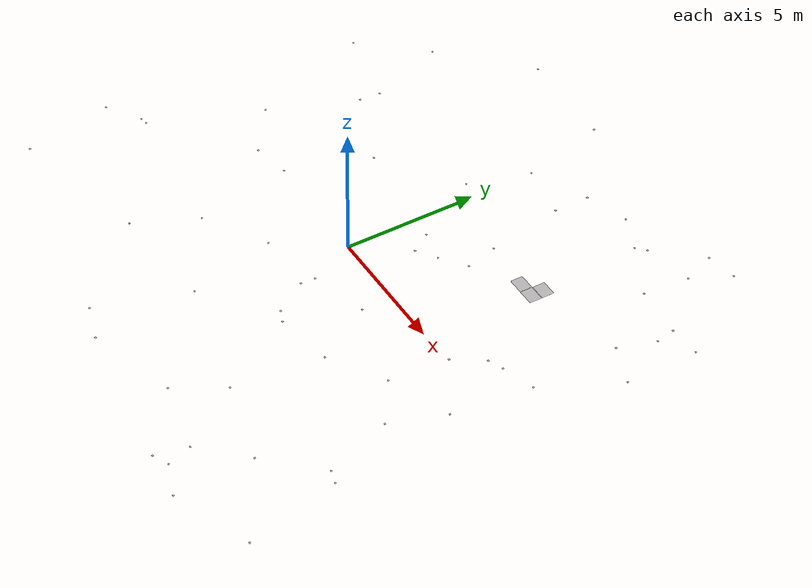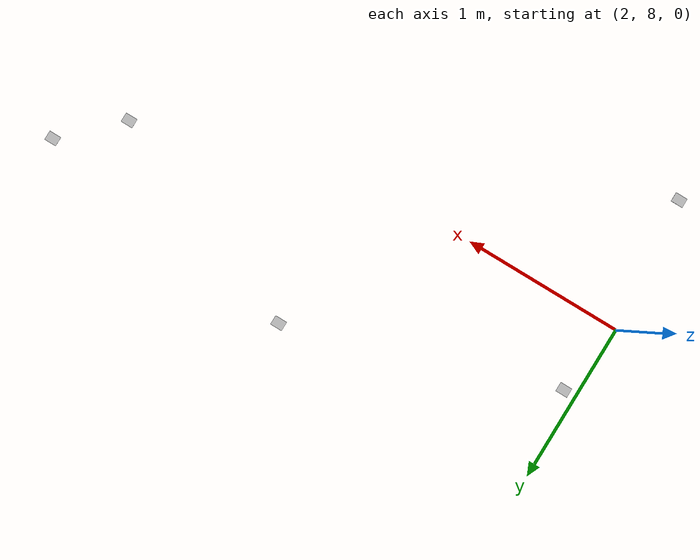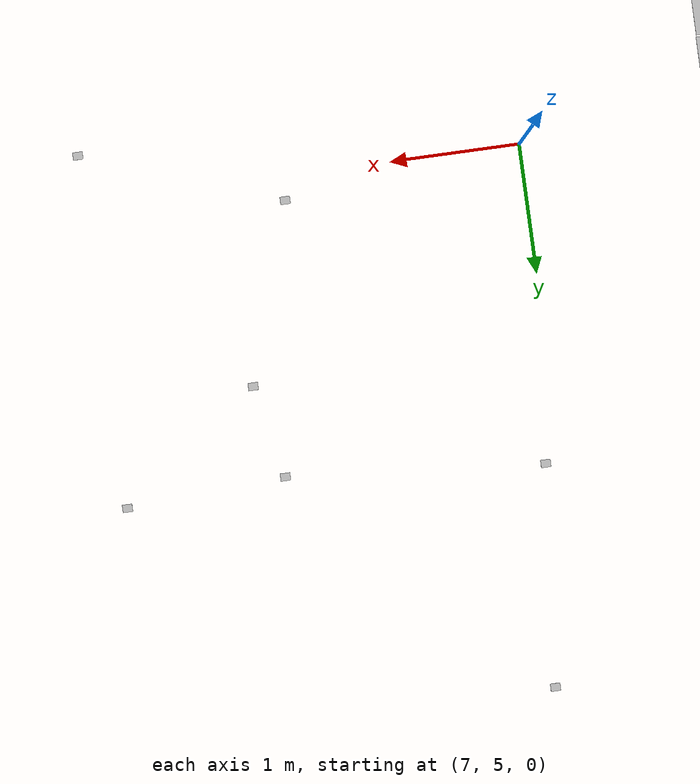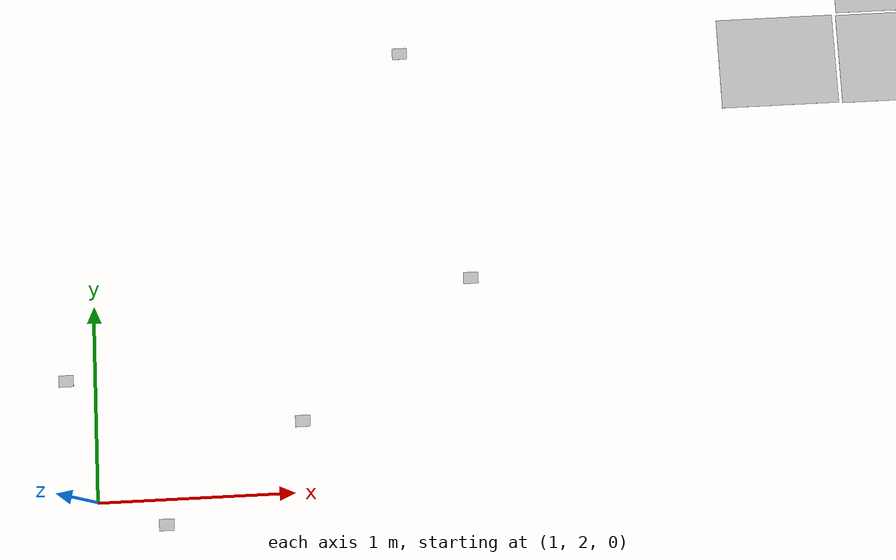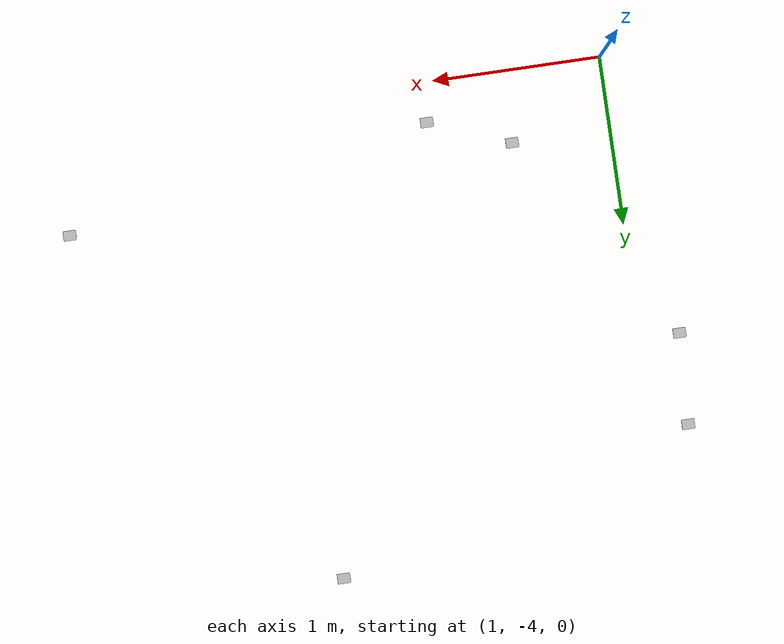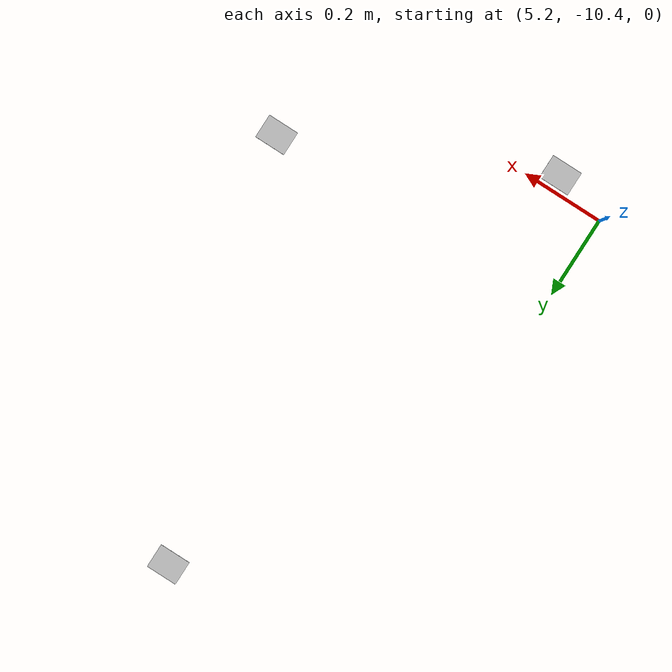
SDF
<sdf version="1.4">
 <world name="default">
  <light name="sun" type="directional">
   <pose>0 0 10 0 -0 0</pose>
   <diffuse>0.8 0.8 0.8 1</diffuse>
   <specular>0.2 0.2 0.2 1</specular>
   <attenuation>
    <range>1000</range>
    <constant>0.9</constant>
    <linear>0.01</linear>
    <quadratic>0.001</quadratic>
   </attenuation>
   <direction>-0.5 0.1 -0.9</direction>
  </light>
  <plugin name="SetupWorld" filename="libgazebo_plugins.so"/>
  <physics type="ode">
   <max_step_size>0.001</max_step_size>
   <real_time_factor>1</real_time_factor>
   <real_time_update_rate>1000</real_time_update_rate>
   <gravity>0 0 -9.8</gravity>
  </physics>
  <scene><ambient>0.4 0.4 0.4 1</ambient><background>0.7 0.7 0.7 1</background><shadows>1</shadows></scene>
  <spherical_coordinates>
   <surface_model>EARTH_WGS84</surface_model>
   <latitude_deg>0</latitude_deg>
   <longitude_deg>0</longitude_deg>
   <elevation>0</elevation>
   <heading_deg>0</heading_deg>
  </spherical_coordinates>
  <model name="at0">
   <static>1</static>
   <link name="link">
    <collision name="collision"><geometry><box><size>0.0763 0.05912 0.001</size></box></geometry></collision>
    <visual name="visual">
     <geometry><box><size>0.0763 0.05912 0.001</size></box></geometry>
     <material>
      <script>
       <uri>model://at0/materials/scripts</uri>
       <uri>model://at0/materials/textures</uri>
       <name>at0/Diffuse</name>
      </script>
     </material>
    </visual>
    <velocity_decay><linear>0</linear><angular>0</angular></velocity_decay>
   </link>
   <pose>8.83613 5.18277 0 0 -0 0</pose>
  </model>
  <model name="at1">
   <static>1</static>
   <link name="link">
    <collision name="collision"><geometry><box><size>0.0763 0.05912 0.001</size></box></geometry></collision>
    <visual name="visual">
     <geometry><box><size>0.0763 0.05912 0.001</size></box></geometry>
     <material>
      <script>
       <uri>model://at1/materials/scripts</uri>
       <uri>model://at1/materials/textures</uri>
       <name>at1/Diffuse</name>
      </script>
     </material>
    </visual>
    <velocity_decay><linear>0</linear><angular>0</angular></velocity_decay>
   </link>
   <pose>7.28107 9.16257 0 0 -0 0</pose>
  </model>
  <model name="at2">
   <static>1</static>
   <link name="link">
    <collision name="collision"><geometry><box><size>0.0763 0.05912 0.001</size></box></geometry></collision>
    <visual name="visual">
     <geometry><box><size>0.0763 0.05912 0.001</size></box></geometry>
     <material>
      <script>
       <uri>model://at2/materials/scripts</uri>
       <uri>model://at2/materials/textures</uri>
       <name>at2/Diffuse</name>
      </script>
     </material>
    </visual>
    <velocity_decay><linear>0</linear><angular>0</angular></velocity_decay>
   </link>
   <pose>-0.459324 -9.5369 0 0 -0 0</pose>
  </model>
  <model name="at3">
   <static>1</static>
   <link name="link">
    <collision name="collision"><geometry><box><size>0.0763 0.05912 0.001</size></box></geometry></collision>
    <visual name="visual">
     <geometry><box><size>0.0763 0.05912 0.001</size></box></geometry>
     <material>
      <script>
       <uri>model://at3/materials/scripts</uri>
       <uri>model://at3/materials/textures</uri>
       <name>at3/Diffuse</name>
      </script>
     </material>
    </visual>
    <velocity_decay><linear>0</linear><angular>0</angular></velocity_decay>
   </link>
   <pose>4.25449 -3.39468 0 0 -0 0</pose>
  </model>
  <model name="at4">
   <static>1</static>
   <link name="link">
    <collision name="collision"><geometry><box><size>0.0763 0.05912 0.001</size></box></geometry></collision>
    <visual name="visual">
     <geometry><box><size>0.0763 0.05912 0.001</size></box></geometry>
     <material>
      <script>
       <uri>model://at4/materials/scripts</uri>
       <uri>model://at4/materials/textures</uri>
       <name>at4/Diffuse</name>
      </script>
     </material>
    </visual>
    <velocity_decay><linear>0</linear><angular>0</angular></velocity_decay>
   </link>
   <pose>2.62708 4.26163 0 0 -0 0</pose>
  </model>
  <model name="at5">
   <static>1</static>
   <link name="link">
    <collision name="collision"><geometry><box><size>0.0763 0.05912 0.001</size></box></geometry></collision>
    <visual name="visual">
     <geometry><box><size>0.0763 0.05912 0.001</size></box></geometry>
     <material>
      <script>
       <uri>model://at5/materials/scripts</uri>
       <uri>model://at5/materials/textures</uri>
       <name>at5/Diffuse</name>
      </script>
     </material>
    </visual>
    <velocity_decay><linear>0</linear><angular>0</angular></velocity_decay>
   </link>
   <pose>-0.003685 7.46622 0 0 -0 0</pose>
  </model>
  <model name="at6">
   <static>1</static>
   <link name="link">
    <collision name="collision"><geometry><box><size>0.0763 0.05912 0.001</size></box></geometry></collision>
    <visual name="visual">
     <geometry><box><size>0.0763 0.05912 0.001</size></box></geometry>
     <material>
      <script>
       <uri>model://at6/materials/scripts</uri>
       <uri>model://at6/materials/textures</uri>
       <name>at6/Diffuse</name>
      </script>
     </material>
    </visual>
    <velocity_decay><linear>0</linear><angular>0</angular></velocity_decay>
   </link>
   <pose>-7.4865 7.94542 0 0 -0 0</pose>
  </model>
  <model name="at7">
   <static>1</static>
   <link name="link">
    <collision name="collision"><geometry><box><size>0.0763 0.05912 0.001</size></box></geometry></collision>
    <visual name="visual">
     <geometry><box><size>0.0763 0.05912 0.001</size></box></geometry>
     <material>
      <script>
       <uri>model://at7/materials/scripts</uri>
       <uri>model://at7/materials/textures</uri>
       <name>at7/Diffuse</name>
      </script>
     </material>
    </visual>
    <velocity_decay><linear>0</linear><angular>0</angular></velocity_decay>
   </link>
   <pose>3.89666 -6.79232 0 0 -0 0</pose>
  </model>
  <model name="at8">
   <static>1</static>
   <link name="link">
    <collision name="collision"><geometry><box><size>0.0763 0.05912 0.001</size></box></geometry></collision>
    <visual name="visual">
     <geometry><box><size>0.0763 0.05912 0.001</size></box></geometry>
     <material>
      <script>
       <uri>model://at8/materials/scripts</uri>
       <uri>model://at8/materials/textures</uri>
       <name>at8/Diffuse</name>
      </script>
     </material>
    </visual>
    <velocity_decay><linear>0</linear><angular>0</angular></velocity_decay>
   </link>
   <pose>6.2705 -2.13614 0 0 -0 0</pose>
  </model>
  <model name="at9">
   <static>1</static>
   <link name="link">
    <collision name="collision"><geometry><box><size>0.0763 0.05912 0.001</size></box></geometry></collision>
    <visual name="visual">
     <geometry><box><size>0.0763 0.05912 0.001</size></box></geometry>
     <material>
      <script>
       <uri>model://at9/materials/scripts</uri>
       <uri>model://at9/materials/textures</uri>
       <name>at9/Diffuse</name>
      </script>
     </material>
    </visual>
    <velocity_decay><linear>0</linear><angular>0</angular></velocity_decay>
   </link>
   <pose>-1.56764 -2.27491 0 0 -0 0</pose>
  </model>
  <model name="at10">
   <static>1</static>
   <link name="link">
    <collision name="collision"><geometry><box><size>0.0763 0.05912 0.001</size></box></geometry></collision>
    <visual name="visual">
     <geometry><box><size>0.0763 0.05912 0.001</size></box></geometry>
     <material>
      <script>
       <uri>model://at10/materials/scripts</uri>
       <uri>model://at10/materials/textures</uri>
       <name>at10/Diffuse</name>
      </script>
     </material>
    </visual>
    <velocity_decay><linear>0</linear><angular>0</angular></velocity_decay>
   </link>
   <pose>-6.44239 5.0842 0 0 -0 0</pose>
  </model>
  <model name="at11">
   <static>1</static>
   <link name="link">
    <collision name="collision"><geometry><box><size>0.0763 0.05912 0.001</size></box></geometry></collision>
    <visual name="visual">
     <geometry><box><size>0.0763 0.05912 0.001</size></box></geometry>
     <material>
      <script>
       <uri>model://at11/materials/scripts</uri>
       <uri>model://at11/materials/textures</uri>
       <name>at11/Diffuse</name>
      </script>
     </material>
    </visual>
    <velocity_decay><linear>0</linear><angular>0</angular></velocity_decay>
   </link>
   <pose>-0.675889 5.1924 0 0 -0 0</pose>
  </model>
  <model name="at12">
   <static>1</static>
   <link name="link">
    <collision name="collision"><geometry><box><size>0.0763 0.05912 0.001</size></box></geometry></collision>
    <visual name="visual">
     <geometry><box><size>0.0763 0.05912 0.001</size></box></geometry>
     <material>
      <script>
       <uri>model://at12/materials/scripts</uri>
       <uri>model://at12/materials/textures</uri>
       <name>at12/Diffuse</name>
      </script>
     </material>
    </visual>
    <velocity_decay><linear>0</linear><angular>0</angular></velocity_decay>
   </link>
   <pose>-3.85181 -3.6424 0 0 -0 0</pose>
  </model>
  <model name="at13">
   <static>1</static>
   <link name="link">
    <collision name="collision"><geometry><box><size>0.0763 0.05912 0.001</size></box></geometry></collision>
    <visual name="visual">
     <geometry><box><size>0.0763 0.05912 0.001</size></box></geometry>
     <material>
      <script>
       <uri>model://at13/materials/scripts</uri>
       <uri>model://at13/materials/textures</uri>
       <name>at13/Diffuse</name>
      </script>
     </material>
    </visual>
    <velocity_decay><linear>0</linear><angular>0</angular></velocity_decay>
   </link>
   <pose>9.38117 -5.96568 0 0 -0 0</pose>
  </model>
  <model name="at14">
   <static>1</static>
   <link name="link">
    <collision name="collision"><geometry><box><size>0.0763 0.05912 0.001</size></box></geometry></collision>
    <visual name="visual">
     <geometry><box><size>0.0763 0.05912 0.001</size></box></geometry>
     <material>
      <script>
       <uri>model://at14/materials/scripts</uri>
       <uri>model://at14/materials/textures</uri>
       <name>at14/Diffuse</name>
      </script>
     </material>
    </visual>
    <velocity_decay><linear>0</linear><angular>0</angular></velocity_decay>
   </link>
   <pose>-9.40963 5.71224 0 0 -0 0</pose>
  </model>
  <model name="at15">
   <static>1</static>
   <link name="link">
    <collision name="collision"><geometry><box><size>0.0763 0.05912 0.001</size></box></geometry></collision>
    <visual name="visual">
     <geometry><box><size>0.0763 0.05912 0.001</size></box></geometry>
     <material>
      <script>
       <uri>model://at15/materials/scripts</uri>
       <uri>model://at15/materials/textures</uri>
       <name>at15/Diffuse</name>
      </script>
     </material>
    </visual>
    <velocity_decay><linear>0</linear><angular>0</angular></velocity_decay>
   </link>
   <pose>-7.75311 1.08105 0 0 -0 0</pose>
  </model>
  <model name="at16">
   <static>1</static>
   <link name="link">
    <collision name="collision"><geometry><box><size>0.0763 0.05912 0.001</size></box></geometry></collision>
    <visual name="visual">
     <geometry><box><size>0.0763 0.05912 0.001</size></box></geometry>
     <material>
      <script>
       <uri>model://at16/materials/scripts</uri>
       <uri>model://at16/materials/textures</uri>
       <name>at16/Diffuse</name>
      </script>
     </material>
    </visual>
    <velocity_decay><linear>0</linear><angular>0</angular></velocity_decay>
   </link>
   <pose>7.12534 7.45138 0 0 -0 0</pose>
  </model>
  <model name="at17">
   <static>1</static>
   <link name="link">
    <collision name="collision"><geometry><box><size>0.0763 0.05912 0.001</size></box></geometry></collision>
    <visual name="visual">
     <geometry><box><size>0.0763 0.05912 0.001</size></box></geometry>
     <material>
      <script>
       <uri>model://at17/materials/scripts</uri>
       <uri>model://at17/materials/textures</uri>
       <name>at17/Diffuse</name>
      </script>
     </material>
    </visual>
    <velocity_decay><linear>0</linear><angular>0</angular></velocity_decay>
   </link>
   <pose>8.63637 -1.19757 0 0 -0 0</pose>
  </model>
  <model name="at18">
   <static>1</static>
   <link name="link">
    <collision name="collision"><geometry><box><size>0.0763 0.05912 0.001</size></box></geometry></collision>
    <visual name="visual">
     <geometry><box><size>0.0763 0.05912 0.001</size></box></geometry>
     <material>
      <script>
       <uri>model://at18/materials/scripts</uri>
       <uri>model://at18/materials/textures</uri>
       <name>at18/Diffuse</name>
      </script>
     </material>
    </visual>
    <velocity_decay><linear>0</linear><angular>0</angular></velocity_decay>
   </link>
   <pose>0.763007 -2.31732 0 0 -0 0</pose>
  </model>
  <model name="at19">
   <static>1</static>
   <link name="link">
    <collision name="collision"><geometry><box><size>0.0763 0.05912 0.001</size></box></geometry></collision>
    <visual name="visual">
     <geometry><box><size>0.0763 0.05912 0.001</size></box></geometry>
     <material>
      <script>
       <uri>model://at19/materials/scripts</uri>
       <uri>model://at19/materials/textures</uri>
       <name>at19/Diffuse</name>
      </script>
     </material>
    </visual>
    <velocity_decay><linear>0</linear><angular>0</angular></velocity_decay>
   </link>
   <pose>-4.68135 10.7388 0 0 -0 0</pose>
  </model>
  <model name="at20">
   <static>1</static>
   <link name="link">
    <collision name="collision"><geometry><box><size>0.0763 0.05912 0.001</size></box></geometry></collision>
    <visual name="visual">
     <geometry><box><size>0.0763 0.05912 0.001</size></box></geometry>
     <material>
      <script>
       <uri>model://at20/materials/scripts</uri>
       <uri>model://at20/materials/textures</uri>
       <name>at20/Diffuse</name>
      </script>
     </material>
    </visual>
    <velocity_decay><linear>0</linear><angular>0</angular></velocity_decay>
   </link>
   <pose>7.7342 1.42 0 0 -0 0</pose>
  </model>
  <model name="at21">
   <static>1</static>
   <link name="link">
    <collision name="collision"><geometry><box><size>0.0763 0.05912 0.001</size></box></geometry></collision>
    <visual name="visual">
     <geometry><box><size>0.0763 0.05912 0.001</size></box></geometry>
     <material>
      <script>
       <uri>model://at21/materials/scripts</uri>
       <uri>model://at21/materials/textures</uri>
       <name>at21/Diffuse</name>
      </script>
     </material>
    </visual>
    <velocity_decay><linear>0</linear><angular>0</angular></velocity_decay>
   </link>
   <pose>2.93983 3.0547 0 0 -0 0</pose>
  </model>
  <model name="at22">
   <static>1</static>
   <link name="link">
    <collision name="collision"><geometry><box><size>0.0763 0.05912 0.001</size></box></geometry></collision>
    <visual name="visual">
     <geometry><box><size>0.0763 0.05912 0.001</size></box></geometry>
     <material>
      <script>
       <uri>model://at22/materials/scripts</uri>
       <uri>model://at22/materials/textures</uri>
       <name>at22/Diffuse</name>
      </script>
     </material>
    </visual>
    <velocity_decay><linear>0</linear><angular>0</angular></velocity_decay>
   </link>
   <pose>10.2339 -9.57781 0 0 -0 0</pose>
  </model>
  <model name="at23">
   <static>1</static>
   <link name="link">
    <collision name="collision"><geometry><box><size>0.0763 0.05912 0.001</size></box></geometry></collision>
    <visual name="visual">
     <geometry><box><size>0.0763 0.05912 0.001</size></box></geometry>
     <material>
      <script>
       <uri>model://at23/materials/scripts</uri>
       <uri>model://at23/materials/textures</uri>
       <name>at23/Diffuse</name>
      </script>
     </material>
    </visual>
    <velocity_decay><linear>0</linear><angular>0</angular></velocity_decay>
   </link>
   <pose>-10.1702 -7.15853 0 0 -0 0</pose>
  </model>
  <model name="at24">
   <static>1</static>
   <link name="link">
    <collision name="collision"><geometry><box><size>0.0763 0.05912 0.001</size></box></geometry></collision>
    <visual name="visual">
     <geometry><box><size>0.0763 0.05912 0.001</size></box></geometry>
     <material>
      <script>
       <uri>model://at24/materials/scripts</uri>
       <uri>model://at24/materials/textures</uri>
       <name>at24/Diffuse</name>
      </script>
     </material>
    </visual>
    <velocity_decay><linear>0</linear><angular>0</angular></velocity_decay>
   </link>
   <pose>6.45639 0.103908 0 0 -0 0</pose>
  </model>
  <model name="at25">
   <static>1</static>
   <link name="link">
    <collision name="collision"><geometry><box><size>0.0763 0.05912 0.001</size></box></geometry></collision>
    <visual name="visual">
     <geometry><box><size>0.0763 0.05912 0.001</size></box></geometry>
     <material>
      <script>
       <uri>model://at25/materials/scripts</uri>
       <uri>model://at25/materials/textures</uri>
       <name>at25/Diffuse</name>
      </script>
     </material>
    </visual>
    <velocity_decay><linear>0</linear><angular>0</angular></velocity_decay>
   </link>
   <pose>8.98387 1.81077 0 0 -0 0</pose>
  </model>
  <model name="at26">
   <static>1</static>
   <link name="link">
    <collision name="collision"><geometry><box><size>0.0763 0.05912 0.001</size></box></geometry></collision>
    <visual name="visual">
     <geometry><box><size>0.0763 0.05912 0.001</size></box></geometry>
     <material>
      <script>
       <uri>model://at26/materials/scripts</uri>
       <uri>model://at26/materials/textures</uri>
       <name>at26/Diffuse</name>
      </script>
     </material>
    </visual>
    <velocity_decay><linear>0</linear><angular>0</angular></velocity_decay>
   </link>
   <pose>8.85498 -5.81794 0 0 -0 0</pose>
  </model>
  <model name="at27">
   <static>1</static>
   <link name="link">
    <collision name="collision"><geometry><box><size>0.0763 0.05912 0.001</size></box></geometry></collision>
    <visual name="visual">
     <geometry><box><size>0.0763 0.05912 0.001</size></box></geometry>
     <material>
      <script>
       <uri>model://at27/materials/scripts</uri>
       <uri>model://at27/materials/textures</uri>
       <name>at27/Diffuse</name>
      </script>
     </material>
    </visual>
    <velocity_decay><linear>0</linear><angular>0</angular></velocity_decay>
   </link>
   <pose>9.11837 7.28615 0 0 -0 0</pose>
  </model>
  <model name="at28">
   <static>1</static>
   <link name="link">
    <collision name="collision"><geometry><box><size>0.0763 0.05912 0.001</size></box></geometry></collision>
    <visual name="visual">
     <geometry><box><size>0.0763 0.05912 0.001</size></box></geometry>
     <material>
      <script>
       <uri>model://at28/materials/scripts</uri>
       <uri>model://at28/materials/textures</uri>
       <name>at28/Diffuse</name>
      </script>
     </material>
    </visual>
    <velocity_decay><linear>0</linear><angular>0</angular></velocity_decay>
   </link>
   <pose>-0.83362 10.6587 0 0 -0 0</pose>
  </model>
  <model name="at29">
   <static>1</static>
   <link name="link">
    <collision name="collision"><geometry><box><size>0.0763 0.05912 0.001</size></box></geometry></collision>
    <visual name="visual">
     <geometry><box><size>0.0763 0.05912 0.001</size></box></geometry>
     <material>
      <script>
       <uri>model://at29/materials/scripts</uri>
       <uri>model://at29/materials/textures</uri>
       <name>at29/Diffuse</name>
      </script>
     </material>
    </visual>
    <velocity_decay><linear>0</linear><angular>0</angular></velocity_decay>
   </link>
   <pose>2.0484 2.36327 0 0 -0 0</pose>
  </model>
  <model name="at30">
   <static>1</static>
   <link name="link">
    <collision name="collision"><geometry><box><size>0.0763 0.05912 0.001</size></box></geometry></collision>
    <visual name="visual">
     <geometry><box><size>0.0763 0.05912 0.001</size></box></geometry>
     <material>
      <script>
       <uri>model://at30/materials/scripts</uri>
       <uri>model://at30/materials/textures</uri>
       <name>at30/Diffuse</name>
      </script>
     </material>
    </visual>
    <velocity_decay><linear>0</linear><angular>0</angular></velocity_decay>
   </link>
   <pose>0.789791 -1.77626 0 0 -0 0</pose>
  </model>
  <model name="at31">
   <static>1</static>
   <link name="link">
    <collision name="collision"><geometry><box><size>0.0763 0.05912 0.001</size></box></geometry></collision>
    <visual name="visual">
     <geometry><box><size>0.0763 0.05912 0.001</size></box></geometry>
     <material>
      <script>
       <uri>model://at31/materials/scripts</uri>
       <uri>model://at31/materials/textures</uri>
       <name>at31/Diffuse</name>
      </script>
     </material>
    </visual>
    <velocity_decay><linear>0</linear><angular>0</angular></velocity_decay>
   </link>
   <pose>7.97616 10.5777 0 0 -0 0</pose>
  </model>
  <model name="at32">
   <static>1</static>
   <link name="link">
    <collision name="collision"><geometry><box><size>0.0763 0.05912 0.001</size></box></geometry></collision>
    <visual name="visual">
     <geometry><box><size>0.0763 0.05912 0.001</size></box></geometry>
     <material>
      <script>
       <uri>model://at32/materials/scripts</uri>
       <uri>model://at32/materials/textures</uri>
       <name>at32/Diffuse</name>
      </script>
     </material>
    </visual>
    <velocity_decay><linear>0</linear><angular>0</angular></velocity_decay>
   </link>
   <pose>7.10884 -7.65518 0 0 -0 0</pose>
  </model>
  <model name="at33">
   <static>1</static>
   <link name="link">
    <collision name="collision"><geometry><box><size>0.0763 0.05912 0.001</size></box></geometry></collision>
    <visual name="visual">
     <geometry><box><size>0.0763 0.05912 0.001</size></box></geometry>
     <material>
      <script>
       <uri>model://at33/materials/scripts</uri>
       <uri>model://at33/materials/textures</uri>
       <name>at33/Diffuse</name>
      </script>
     </material>
    </visual>
    <velocity_decay><linear>0</linear><angular>0</angular></velocity_decay>
   </link>
   <pose>10.3664 4.63219 0 0 -0 0</pose>
  </model>
  <model name="at34">
   <static>1</static>
   <link name="link">
    <collision name="collision"><geometry><box><size>0.0763 0.05912 0.001</size></box></geometry></collision>
    <visual name="visual">
     <geometry><box><size>0.0763 0.05912 0.001</size></box></geometry>
     <material>
      <script>
       <uri>model://at34/materials/scripts</uri>
       <uri>model://at34/materials/textures</uri>
       <name>at34/Diffuse</name>
      </script>
     </material>
    </visual>
    <velocity_decay><linear>0</linear><angular>0</angular></velocity_decay>
   </link>
   <pose>2.07697 7.15063 0 0 -0 0</pose>
  </model>
  <model name="at35">
   <static>1</static>
   <link name="link">
    <collision name="collision"><geometry><box><size>0.0763 0.05912 0.001</size></box></geometry></collision>
    <visual name="visual">
     <geometry><box><size>0.0763 0.05912 0.001</size></box></geometry>
     <material>
      <script>
       <uri>model://at35/materials/scripts</uri>
       <uri>model://at35/materials/textures</uri>
       <name>at35/Diffuse</name>
      </script>
     </material>
    </visual>
    <velocity_decay><linear>0</linear><angular>0</angular></velocity_decay>
   </link>
   <pose>-4.89782 -5.93321 0 0 -0 0</pose>
  </model>
  <model name="at36">
   <static>1</static>
   <link name="link">
    <collision name="collision"><geometry><box><size>0.0763 0.05912 0.001</size></box></geometry></collision>
    <visual name="visual">
     <geometry><box><size>0.0763 0.05912 0.001</size></box></geometry>
     <material>
      <script>
       <uri>model://at36/materials/scripts</uri>
       <uri>model://at36/materials/textures</uri>
       <name>at36/Diffuse</name>
      </script>
     </material>
    </visual>
    <velocity_decay><linear>0</linear><angular>0</angular></velocity_decay>
   </link>
   <pose>-0.744663 -5.61396 0 0 -0 0</pose>
  </model>
  <model name="at37">
   <static>1</static>
   <link name="link">
    <collision name="collision"><geometry><box><size>0.0763 0.05912 0.001</size></box></geometry></collision>
    <visual name="visual">
     <geometry><box><size>0.0763 0.05912 0.001</size></box></geometry>
     <material>
      <script>
       <uri>model://at37/materials/scripts</uri>
       <uri>model://at37/materials/textures</uri>
       <name>at37/Diffuse</name>
      </script>
     </material>
    </visual>
    <velocity_decay><linear>0</linear><angular>0</angular></velocity_decay>
   </link>
   <pose>-4.56101 0.035132 0 0 -0 0</pose>
  </model>
  <model name="at38">
   <static>1</static>
   <link name="link">
    <collision name="collision"><geometry><box><size>0.0763 0.05912 0.001</size></box></geometry></collision>
    <visual name="visual">
     <geometry><box><size>0.0763 0.05912 0.001</size></box></geometry>
     <material>
      <script>
       <uri>model://at38/materials/scripts</uri>
       <uri>model://at38/materials/textures</uri>
       <name>at38/Diffuse</name>
      </script>
     </material>
    </visual>
    <velocity_decay><linear>0</linear><angular>0</angular></velocity_decay>
   </link>
   <pose>-1.82248 -9.05462 0 0 -0 0</pose>
  </model>
  <model name="at39">
   <static>1</static>
   <link name="link">
    <collision name="collision"><geometry><box><size>0.0763 0.05912 0.001</size></box></geometry></collision>
    <visual name="visual">
     <geometry><box><size>0.0763 0.05912 0.001</size></box></geometry>
     <material>
      <script>
       <uri>model://at39/materials/scripts</uri>
       <uri>model://at39/materials/textures</uri>
       <name>at39/Diffuse</name>
      </script>
     </material>
    </visual>
    <velocity_decay><linear>0</linear><angular>0</angular></velocity_decay>
   </link>
   <pose>-10.811 -3.78861 0 0 -0 0</pose>
  </model>
  <model name="at40">
   <static>1</static>
   <link name="link">
    <collision name="collision"><geometry><box><size>0.0763 0.05912 0.001</size></box></geometry></collision>
    <visual name="visual">
     <geometry><box><size>0.0763 0.05912 0.001</size></box></geometry>
     <material>
      <script>
       <uri>model://at40/materials/scripts</uri>
       <uri>model://at40/materials/textures</uri>
       <name>at40/Diffuse</name>
      </script>
     </material>
    </visual>
    <velocity_decay><linear>0</linear><angular>0</angular></velocity_decay>
   </link>
   <pose>3.70616 8.99402 0 0 -0 0</pose>
  </model>
  <model name="at41">
   <static>1</static>
   <link name="link">
    <collision name="collision"><geometry><box><size>0.0763 0.05912 0.001</size></box></geometry></collision>
    <visual name="visual">
     <geometry><box><size>0.0763 0.05912 0.001</size></box></geometry>
     <material>
      <script>
       <uri>model://at41/materials/scripts</uri>
       <uri>model://at41/materials/textures</uri>
       <name>at41/Diffuse</name>
      </script>
     </material>
    </visual>
    <velocity_decay><linear>0</linear><angular>0</angular></velocity_decay>
   </link>
   <pose>1.34345 1.87453 0 0 -0 0</pose>
  </model>
  <model name="at42">
   <static>1</static>
   <link name="link">
    <collision name="collision"><geometry><box><size>0.0763 0.05912 0.001</size></box></geometry></collision>
    <visual name="visual">
     <geometry><box><size>0.0763 0.05912 0.001</size></box></geometry>
     <material>
      <script>
       <uri>model://at42/materials/scripts</uri>
       <uri>model://at42/materials/textures</uri>
       <name>at42/Diffuse</name>
      </script>
     </material>
    </visual>
    <velocity_decay><linear>0</linear><angular>0</angular></velocity_decay>
   </link>
   <pose>5.33017 -10.4402 0 0 -0 0</pose>
  </model>
  <model name="at43">
   <static>1</static>
   <link name="link">
    <collision name="collision"><geometry><box><size>0.0763 0.05912 0.001</size></box></geometry></collision>
    <visual name="visual">
     <geometry><box><size>0.0763 0.05912 0.001</size></box></geometry>
     <material>
      <script>
       <uri>model://at43/materials/scripts</uri>
       <uri>model://at43/materials/textures</uri>
       <name>at43/Diffuse</name>
      </script>
     </material>
    </visual>
    <velocity_decay><linear>0</linear><angular>0</angular></velocity_decay>
   </link>
   <pose>1.58328 -3.57143 0 0 -0 0</pose>
  </model>
  <model name="at44">
   <static>1</static>
   <link name="link">
    <collision name="collision"><geometry><box><size>0.0763 0.05912 0.001</size></box></geometry></collision>
    <visual name="visual">
     <geometry><box><size>0.0763 0.05912 0.001</size></box></geometry>
     <material>
      <script>
       <uri>model://at44/materials/scripts</uri>
       <uri>model://at44/materials/textures</uri>
       <name>at44/Diffuse</name>
      </script>
     </material>
    </visual>
    <velocity_decay><linear>0</linear><angular>0</angular></velocity_decay>
   </link>
   <pose>2.8731 -8.57693 0 0 -0 0</pose>
  </model>
  <model name="at45">
   <static>1</static>
   <link name="link">
    <collision name="collision"><geometry><box><size>0.0763 0.05912 0.001</size></box></geometry></collision>
    <visual name="visual">
     <geometry><box><size>0.0763 0.05912 0.001</size></box></geometry>
     <material>
      <script>
       <uri>model://at45/materials/scripts</uri>
       <uri>model://at45/materials/textures</uri>
       <name>at45/Diffuse</name>
      </script>
     </material>
    </visual>
    <velocity_decay><linear>0</linear><angular>0</angular></velocity_decay>
   </link>
   <pose>5.60231 -9.21225 0 0 -0 0</pose>
  </model>
  <model name="at46">
   <static>1</static>
   <link name="link">
    <collision name="collision"><geometry><box><size>0.0763 0.05912 0.001</size></box></geometry></collision>
    <visual name="visual">
     <geometry><box><size>0.0763 0.05912 0.001</size></box></geometry>
     <material>
      <script>
       <uri>model://at46/materials/scripts</uri>
       <uri>model://at46/materials/textures</uri>
       <name>at46/Diffuse</name>
      </script>
     </material>
    </visual>
    <velocity_decay><linear>0</linear><angular>0</angular></velocity_decay>
   </link>
   <pose>0.849229 2.62847 0 0 -0 0</pose>
  </model>
  <model name="at47">
   <static>1</static>
   <link name="link">
    <collision name="collision"><geometry><box><size>0.0763 0.05912 0.001</size></box></geometry></collision>
    <visual name="visual">
     <geometry><box><size>0.0763 0.05912 0.001</size></box></geometry>
     <material>
      <script>
       <uri>model://at47/materials/scripts</uri>
       <uri>model://at47/materials/textures</uri>
       <name>at47/Diffuse</name>
      </script>
     </material>
    </visual>
    <velocity_decay><linear>0</linear><angular>0</angular></velocity_decay>
   </link>
   <pose>-9.5846 -2.99193 0 0 -0 0</pose>
  </model>
  <model name="at48">
   <static>1</static>
   <link name="link">
    <collision name="collision"><geometry><box><size>0.0763 0.05912 0.001</size></box></geometry></collision>
    <visual name="visual">
     <geometry><box><size>0.0763 0.05912 0.001</size></box></geometry>
     <material>
      <script>
       <uri>model://at48/materials/scripts</uri>
       <uri>model://at48/materials/textures</uri>
       <name>at48/Diffuse</name>
      </script>
     </material>
    </visual>
    <velocity_decay><linear>0</linear><angular>0</angular></velocity_decay>
   </link>
   <pose>5.92329 -10.1682 0 0 -0 0</pose>
  </model>
  <model name="at49">
   <static>1</static>
   <link name="link">
    <collision name="collision"><geometry><box><size>0.0763 0.05912 0.001</size></box></geometry></collision>
    <visual name="visual">
     <geometry><box><size>0.0763 0.05912 0.001</size></box></geometry>
     <material>
      <script>
       <uri>model://at49/materials/scripts</uri>
       <uri>model://at49/materials/textures</uri>
       <name>at49/Diffuse</name>
      </script>
     </material>
    </visual>
    <velocity_decay><linear>0</linear><angular>0</angular></velocity_decay>
   </link>
   <pose>-9.30974 -2.94975 0 0 -0 0</pose>
  </model>
  <model name="at50">
   <static>1</static>
   <link name="link">
    <collision name="collision"><geometry><box><size>0.0763 0.05912 0.001</size></box></geometry></collision>
    <visual name="visual">
     <geometry><box><size>0.0763 0.05912 0.001</size></box></geometry>
     <material>
      <script>
       <uri>model://at50/materials/scripts</uri>
       <uri>model://at50/materials/textures</uri>
       <name>at50/Diffuse</name>
      </script>
     </material>
    </visual>
    <velocity_decay><linear>0</linear><angular>0</angular></velocity_decay>
   </link>
   <pose>7.93247 -3.25756 0 0 -0 0</pose>
  </model>
  <model name="at51">
   <static>1</static>
   <link name="link">
    <collision name="collision"><geometry><box><size>0.0763 0.05912 0.001</size></box></geometry></collision>
    <visual name="visual">
     <geometry><box><size>0.0763 0.05912 0.001</size></box></geometry>
     <material>
      <script>
       <uri>model://at51/materials/scripts</uri>
       <uri>model://at51/materials/textures</uri>
       <name>at51/Diffuse</name>
      </script>
     </material>
    </visual>
    <velocity_decay><linear>0</linear><angular>0</angular></velocity_decay>
   </link>
   <pose>2.06705 -3.76219 0 0 -0 0</pose>
  </model>
  <model name="at52">
   <static>1</static>
   <link name="link">
    <collision name="collision"><geometry><box><size>0.0763 0.05912 0.001</size></box></geometry></collision>
    <visual name="visual">
     <geometry><box><size>0.0763 0.05912 0.001</size></box></geometry>
     <material>
      <script>
       <uri>model://at52/materials/scripts</uri>
       <uri>model://at52/materials/textures</uri>
       <name>at52/Diffuse</name>
      </script>
     </material>
    </visual>
    <velocity_decay><linear>0</linear><angular>0</angular></velocity_decay>
   </link>
   <pose>2.07849 8.45604 0 0 -0 0</pose>
  </model>
  <model name="at53">
   <static>1</static>
   <link name="link">
    <collision name="collision"><geometry><box><size>0.0763 0.05912 0.001</size></box></geometry></collision>
    <visual name="visual">
     <geometry><box><size>0.0763 0.05912 0.001</size></box></geometry>
     <material>
      <script>
       <uri>model://at53/materials/scripts</uri>
       <uri>model://at53/materials/textures</uri>
       <name>at53/Diffuse</name>
      </script>
     </material>
    </visual>
    <velocity_decay><linear>0</linear><angular>0</angular></velocity_decay>
   </link>
   <pose>7.22294 -10.694 0 0 -0 0</pose>
  </model>
  <model name="at54">
   <static>1</static>
   <link name="link">
    <collision name="collision"><geometry><box><size>0.0763 0.05912 0.001</size></box></geometry></collision>
    <visual name="visual">
     <geometry><box><size>0.0763 0.05912 0.001</size></box></geometry>
     <material>
      <script>
       <uri>model://at54/materials/scripts</uri>
       <uri>model://at54/materials/textures</uri>
       <name>at54/Diffuse</name>
      </script>
     </material>
    </visual>
    <velocity_decay><linear>0</linear><angular>0</angular></velocity_decay>
   </link>
   <pose>10.3514 7.36198 0 0 -0 0</pose>
  </model>
  <model name="at55">
   <static>1</static>
   <link name="link">
    <collision name="collision"><geometry><box><size>0.0763 0.05912 0.001</size></box></geometry></collision>
    <visual name="visual">
     <geometry><box><size>0.0763 0.05912 0.001</size></box></geometry>
     <material>
      <script>
       <uri>model://at55/materials/scripts</uri>
       <uri>model://at55/materials/textures</uri>
       <name>at55/Diffuse</name>
      </script>
     </material>
    </visual>
    <velocity_decay><linear>0</linear><angular>0</angular></velocity_decay>
   </link>
   <pose>-3.5326 3.10758 0 0 -0 0</pose>
  </model>
  <model name="at56">
   <static>1</static>
   <link name="link">
    <collision name="collision"><geometry><box><size>0.0763 0.05912 0.001</size></box></geometry></collision>
    <visual name="visual">
     <geometry><box><size>0.0763 0.05912 0.001</size></box></geometry>
     <material>
      <script>
       <uri>model://at56/materials/scripts</uri>
       <uri>model://at56/materials/textures</uri>
       <name>at56/Diffuse</name>
      </script>
     </material>
    </visual>
    <velocity_decay><linear>0</linear><angular>0</angular></velocity_decay>
   </link>
   <pose>5.406 8.76085 0 0 -0 0</pose>
  </model>
  <model name="at57">
   <static>1</static>
   <link name="link">
    <collision name="collision"><geometry><box><size>0.0763 0.05912 0.001</size></box></geometry></collision>
    <visual name="visual">
     <geometry><box><size>0.0763 0.05912 0.001</size></box></geometry>
     <material>
      <script>
       <uri>model://at57/materials/scripts</uri>
       <uri>model://at57/materials/textures</uri>
       <name>at57/Diffuse</name>
      </script>
     </material>
    </visual>
    <velocity_decay><linear>0</linear><angular>0</angular></velocity_decay>
   </link>
   <pose>-5.96789 -0.213825 0 0 -0 0</pose>
  </model>
  <model name="at58">
   <static>1</static>
   <link name="link">
    <collision name="collision"><geometry><box><size>0.0763 0.05912 0.001</size></box></geometry></collision>
    <visual name="visual">
     <geometry><box><size>0.0763 0.05912 0.001</size></box></geometry>
     <material>
      <script>
       <uri>model://at58/materials/scripts</uri>
       <uri>model://at58/materials/textures</uri>
       <name>at58/Diffuse</name>
      </script>
     </material>
    </visual>
    <velocity_decay><linear>0</linear><angular>0</angular></velocity_decay>
   </link>
   <pose>9.27067 6.56539 0 0 -0 0</pose>
  </model>
  <model name="at59">
   <static>1</static>
   <link name="link">
    <collision name="collision"><geometry><box><size>0.0763 0.05912 0.001</size></box></geometry></collision>
    <visual name="visual">
     <geometry><box><size>0.0763 0.05912 0.001</size></box></geometry>
     <material>
      <script>
       <uri>model://at59/materials/scripts</uri>
       <uri>model://at59/materials/textures</uri>
       <name>at59/Diffuse</name>
      </script>
     </material>
    </visual>
    <velocity_decay><linear>0</linear><angular>0</angular></velocity_decay>
   </link>
   <pose>7.16474 1.19378 0 0 -0 0</pose>
  </model>
  <model name="at60">
   <static>1</static>
   <link name="link">
    <collision name="collision"><geometry><box><size>0.0763 0.05912 0.001</size></box></geometry></collision>
    <visual name="visual">
     <geometry><box><size>0.0763 0.05912 0.001</size></box></geometry>
     <material>
      <script>
       <uri>model://at60/materials/scripts</uri>
       <uri>model://at60/materials/textures</uri>
       <name>at60/Diffuse</name>
      </script>
     </material>
    </visual>
    <velocity_decay><linear>0</linear><angular>0</angular></velocity_decay>
   </link>
   <pose>2.93152 -1.16231 0 0 -0 0</pose>
  </model>
  <model name="at61">
   <static>1</static>
   <link name="link">
    <collision name="collision"><geometry><box><size>0.0763 0.05912 0.001</size></box></geometry></collision>
    <visual name="visual">
     <geometry><box><size>0.0763 0.05912 0.001</size></box></geometry>
     <material>
      <script>
       <uri>model://at61/materials/scripts</uri>
       <uri>model://at61/materials/textures</uri>
       <name>at61/Diffuse</name>
      </script>
     </material>
    </visual>
    <velocity_decay><linear>0</linear><angular>0</angular></velocity_decay>
   </link>
   <pose>-6.50448 4.29692 0 0 -0 0</pose>
  </model>
  <model name="at62">
   <static>1</static>
   <link name="link">
    <collision name="collision"><geometry><box><size>0.0763 0.05912 0.001</size></box></geometry></collision>
    <visual name="visual">
     <geometry><box><size>0.0763 0.05912 0.001</size></box></geometry>
     <material>
      <script>
       <uri>model://at62/materials/scripts</uri>
       <uri>model://at62/materials/textures</uri>
       <name>at62/Diffuse</name>
      </script>
     </material>
    </visual>
    <velocity_decay><linear>0</linear><angular>0</angular></velocity_decay>
   </link>
   <pose>6.79576 10.3688 0 0 -0 0</pose>
  </model>
  <model name="at63">
   <static>1</static>
   <link name="link">
    <collision name="collision"><geometry><box><size>0.0763 0.05912 0.001</size></box></geometry></collision>
    <visual name="visual">
     <geometry><box><size>0.0763 0.05912 0.001</size></box></geometry>
     <material>
      <script>
       <uri>model://at63/materials/scripts</uri>
       <uri>model://at63/materials/textures</uri>
       <name>at63/Diffuse</name>
      </script>
     </material>
    </visual>
    <velocity_decay><linear>0</linear><angular>0</angular></velocity_decay>
   </link>
   <pose>5.07876 8.43602 0 0 -0 0</pose>
  </model>
  <model name="atags64_1">
   <static>1</static>
   <link name="link">
    <collision name="collision"><geometry><box><size>0.611 0.473 0.001</size></box></geometry></collision>
    <visual name="visual">
     <geometry><box><size>0.611 0.473 0.001</size></box></geometry>
     <material>
      <script>
       <uri>model://atags64_1/materials/scripts</uri>
       <uri>model://atags64_1/materials/textures</uri>
       <name>atags64_1/Diffuse</name>
      </script>
     </material>
    </visual>
    <velocity_decay><linear>0</linear><angular>0</angular></velocity_decay>
   </link>
   <pose>5.23493 4.11442 0 0 -0 0</pose>
  </model>
  <model name="atags64_2">
   <static>1</static>
   <link name="link">
    <collision name="collision"><geometry><box><size>0.611 0.473 0.001</size></box></geometry></collision>
    <visual name="visual">
     <geometry><box><size>0.611 0.473 0.001</size></box></geometry>
     <material>
      <script>
       <uri>model://atags64_2/materials/scripts</uri>
       <uri>model://atags64_2/materials/textures</uri>
       <name>atags64_2/Diffuse</name>
      </script>
     </material>
    </visual>
    <velocity_decay><linear>0</linear><angular>0</angular></velocity_decay>
   </link>
   <pose>4.60479 4.11831 0 0 -0 0</pose>
  </model>
  <model name="atags64_3">
   <static>1</static>
   <link name="link">
    <collision name="collision"><geometry><box><size>0.611 0.473 0.001</size></box></geometry></collision>
    <visual name="visual">
     <geometry><box><size>0.611 0.473 0.001</size></box></geometry>
     <material>
      <script>
       <uri>model://atags64_3/materials/scripts</uri>
       <uri>model://atags64_3/materials/textures</uri>
       <name>atags64_3/Diffuse</name>
      </script>
     </material>
    </visual>
    <velocity_decay><linear>0</linear><angular>0</angular></velocity_decay>
   </link>
   <pose>5.23958 4.60056 0 0 -0 0</pose>
  </model>
 </world>
</sdf>
